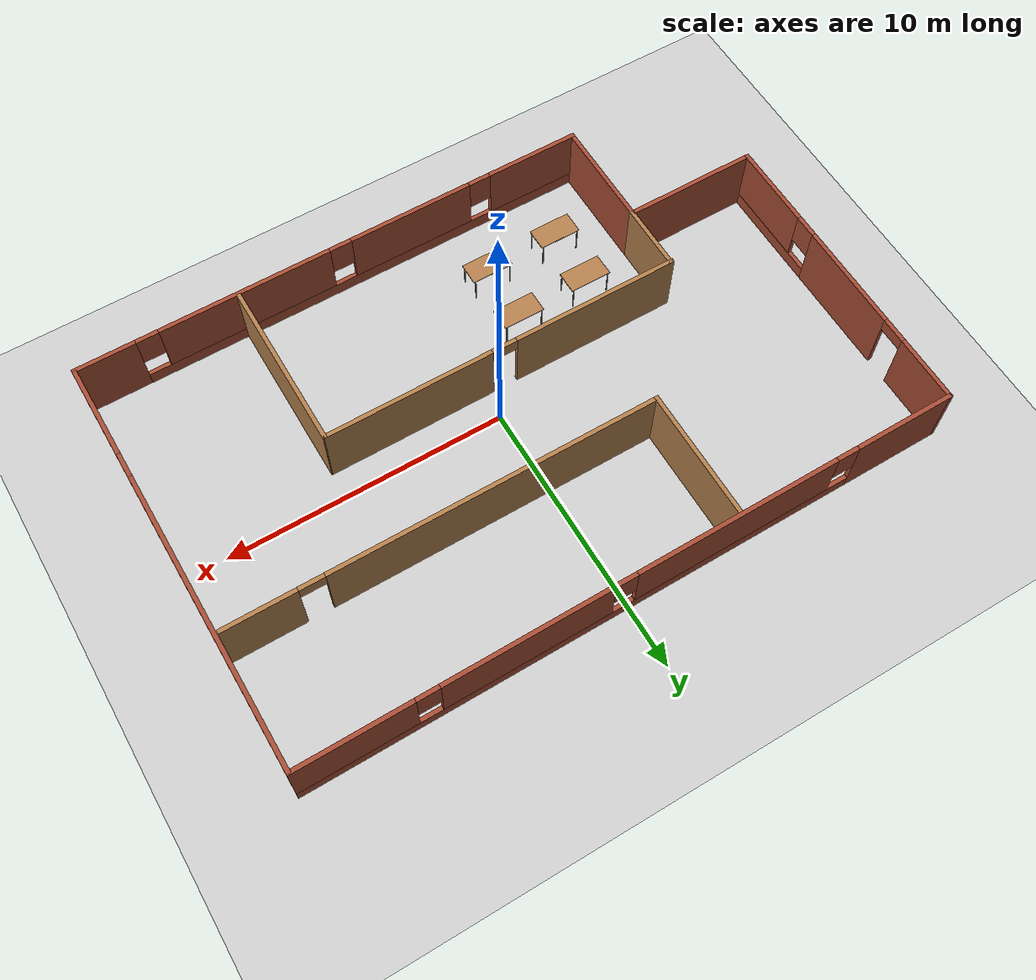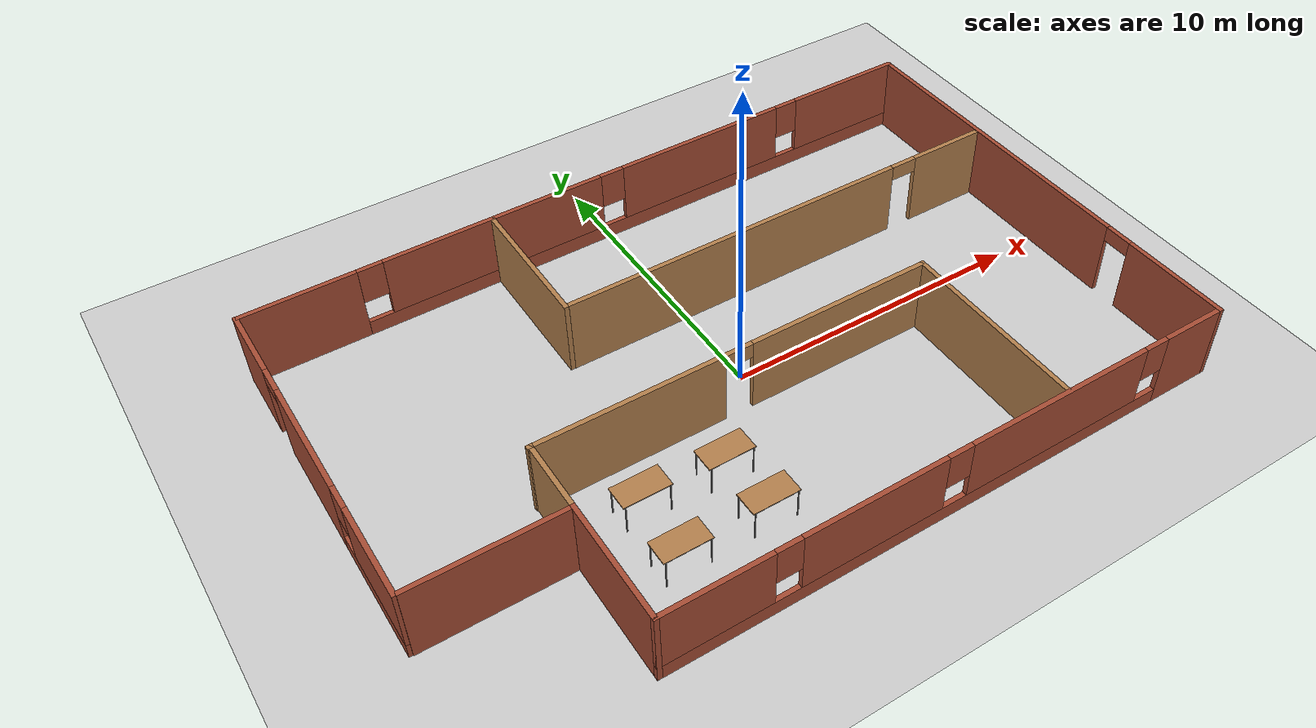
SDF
<sdf version="1.6">
 <world name="default">
  <model name="ground_plane">
   <static>1</static>
   <link name="link">
    <collision name="collision">
     <geometry><plane><normal>0 0 1</normal><size>100 100</size></plane></geometry>
     <surface><friction><ode><mu>100</mu><mu2>50</mu2></ode></friction></surface>
    </collision>
    <visual name="visual">
     <cast_shadows>0</cast_shadows>
     <geometry><plane><normal>0 0 1</normal><size>100 100</size></plane></geometry>
     <material>
      <script><uri>file://media/materials/scripts/gazebo.material</uri><name>Gazebo/Grey</name></script>
     </material>
    </visual>
   </link>
  </model>
  <model name="build2">
   <pose>-0.2148 0.30138 0 0 -0 0</pose>
   <link name="Wall_24">
    <pose>-11.6566 1.88746 0 0 0 -1.56954</pose>
    <visual name="Wall_24_Visual_0">
     <pose>-4.36296 0 1.25 0 -0 0</pose>
     <geometry><box><size>2.44005 0.15 2.5</size></box></geometry>
     <material>
      <script><uri>file://media/materials/scripts/gazebo.material</uri><name>Gazebo/Bricks</name></script>
      <ambient>1 1 1 1</ambient>
     </material>
     <meta><layer>0</layer></meta>
    </visual>
    <collision name="Wall_24_Collision_0">
     <geometry><box><size>2.44005 0.15 2.5</size></box></geometry>
     <pose>-4.36296 0 1.25 0 -0 0</pose>
    </collision>
    <visual name="Wall_24_Visual_1">
     <pose>-0.28088 0 1.25 0 -0 0</pose>
     <geometry><box><size>3.92411 0.15 2.5</size></box></geometry>
     <material>
      <script><uri>file://media/materials/scripts/gazebo.material</uri><name>Gazebo/Bricks</name></script>
      <ambient>1 1 1 1</ambient>
     </material>
     <meta><layer>0</layer></meta>
    </visual>
    <collision name="Wall_24_Collision_1">
     <geometry><box><size>3.92411 0.15 2.5</size></box></geometry>
     <pose>-0.28088 0 1.25 0 -0 0</pose>
    </collision>
    <visual name="Wall_24_Visual_2">
     <pose>3.63208 0 0.25 0 -0 0</pose>
     <geometry><box><size>3.90181 0.15 0.5</size></box></geometry>
     <material>
      <script><uri>file://media/materials/scripts/gazebo.material</uri><name>Gazebo/Bricks</name></script>
      <ambient>1 1 1 1</ambient>
     </material>
     <meta><layer>0</layer></meta>
    </visual>
    <collision name="Wall_24_Collision_2">
     <geometry><box><size>3.90181 0.15 0.5</size></box></geometry>
     <pose>3.63208 0 0.25 0 -0 0</pose>
    </collision>
    <visual name="Wall_24_Visual_3">
     <pose>4.03208 0 1.5 0 -0 0</pose>
     <geometry><box><size>3.10181 0.15 2</size></box></geometry>
     <material>
      <script><uri>file://media/materials/scripts/gazebo.material</uri><name>Gazebo/Bricks</name></script>
      <ambient>1 1 1 1</ambient>
     </material>
     <meta><layer>0</layer></meta>
    </visual>
    <collision name="Wall_24_Collision_3">
     <geometry><box><size>3.10181 0.15 2</size></box></geometry>
     <pose>4.03208 0 1.5 0 -0 0</pose>
    </collision>
    <visual name="Wall_24_Visual_4">
     <pose>2.08117 0 1.9 0 -0 0</pose>
     <geometry><box><size>0.8 0.15 1.2</size></box></geometry>
     <material>
      <script><uri>file://media/materials/scripts/gazebo.material</uri><name>Gazebo/Bricks</name></script>
      <ambient>1 1 1 1</ambient>
     </material>
     <meta><layer>0</layer></meta>
    </visual>
    <collision name="Wall_24_Collision_4">
     <geometry><box><size>0.8 0.15 1.2</size></box></geometry>
     <pose>2.08117 0 1.9 0 -0 0</pose>
    </collision>
    <visual name="Wall_24_Visual_5">
     <pose>-2.69294 0 2.25 0 -0 0</pose>
     <geometry><box><size>0.9 0.15 0.5</size></box></geometry>
     <material>
      <script><uri>file://media/materials/scripts/gazebo.material</uri><name>Gazebo/Bricks</name></script>
      <ambient>1 1 1 1</ambient>
     </material>
     <meta><layer>0</layer></meta>
    </visual>
    <collision name="Wall_24_Collision_5">
     <geometry><box><size>0.9 0.15 0.5</size></box></geometry>
     <pose>-2.69294 0 2.25 0 -0 0</pose>
    </collision>
   </link>
   <link name="Wall_26">
    <pose>-0.020877 7.44171 0 0 -0 0.003988</pose>
    <visual name="Wall_26_Visual_0">
     <pose>-9.86647 0 1.25 0 -0 0</pose>
     <geometry><box><size>3.62156 0.15 2.5</size></box></geometry>
     <material>
      <script><uri>file://media/materials/scripts/gazebo.material</uri><name>Gazebo/Bricks</name></script>
      <ambient>1 1 1 1</ambient>
     </material>
     <meta><layer>0</layer></meta>
    </visual>
    <collision name="Wall_26_Collision_0">
     <geometry><box><size>3.62156 0.15 2.5</size></box></geometry>
     <pose>-9.86647 0 1.25 0 -0 0</pose>
    </collision>
    <visual name="Wall_26_Visual_1">
     <pose>1.81078 0 0.25 0 -0 0</pose>
     <geometry><box><size>19.7329 0.15 0.5</size></box></geometry>
     <material>
      <script><uri>file://media/materials/scripts/gazebo.material</uri><name>Gazebo/Bricks</name></script>
      <ambient>1 1 1 1</ambient>
     </material>
     <meta><layer>0</layer></meta>
    </visual>
    <collision name="Wall_26_Collision_1">
     <geometry><box><size>19.7329 0.15 0.5</size></box></geometry>
     <pose>1.81078 0 0.25 0 -0 0</pose>
    </collision>
    <visual name="Wall_26_Visual_2">
     <pose>-3.58961 0 1.5 0 -0 0</pose>
     <geometry><box><size>7.33215 0.15 2</size></box></geometry>
     <material>
      <script><uri>file://media/materials/scripts/gazebo.material</uri><name>Gazebo/Bricks</name></script>
      <ambient>1 1 1 1</ambient>
     </material>
     <meta><layer>0</layer></meta>
    </visual>
    <collision name="Wall_26_Collision_2">
     <geometry><box><size>7.33215 0.15 2</size></box></geometry>
     <pose>-3.58961 0 1.5 0 -0 0</pose>
    </collision>
    <visual name="Wall_26_Visual_3">
     <pose>3.83417 0 1.5 0 -0 0</pose>
     <geometry><box><size>5.91541 0.15 2</size></box></geometry>
     <material>
      <script><uri>file://media/materials/scripts/gazebo.material</uri><name>Gazebo/Bricks</name></script>
      <ambient>1 1 1 1</ambient>
     </material>
     <meta><layer>0</layer></meta>
    </visual>
    <collision name="Wall_26_Collision_3">
     <geometry><box><size>5.91541 0.15 2</size></box></geometry>
     <pose>3.83417 0 1.5 0 -0 0</pose>
    </collision>
    <visual name="Wall_26_Visual_4">
     <pose>9.63456 0 1.5 0 -0 0</pose>
     <geometry><box><size>4.08537 0.15 2</size></box></geometry>
     <material>
      <script><uri>file://media/materials/scripts/gazebo.material</uri><name>Gazebo/Bricks</name></script>
      <ambient>1 1 1 1</ambient>
     </material>
     <meta><layer>0</layer></meta>
    </visual>
    <collision name="Wall_26_Collision_4">
     <geometry><box><size>4.08537 0.15 2</size></box></geometry>
     <pose>9.63456 0 1.5 0 -0 0</pose>
    </collision>
    <visual name="Wall_26_Visual_5">
     <pose>-7.65569 0 1.9 0 -0 0</pose>
     <geometry><box><size>0.8 0.15 1.2</size></box></geometry>
     <material>
      <script><uri>file://media/materials/scripts/gazebo.material</uri><name>Gazebo/Bricks</name></script>
      <ambient>1 1 1 1</ambient>
     </material>
     <meta><layer>0</layer></meta>
    </visual>
    <collision name="Wall_26_Collision_5">
     <geometry><box><size>0.8 0.15 1.2</size></box></geometry>
     <pose>-7.65569 0 1.9 0 -0 0</pose>
    </collision>
    <visual name="Wall_26_Visual_6">
     <pose>0.476465 0 1.9 0 -0 0</pose>
     <geometry><box><size>0.8 0.15 1.2</size></box></geometry>
     <material>
      <script><uri>file://media/materials/scripts/gazebo.material</uri><name>Gazebo/Bricks</name></script>
      <ambient>1 1 1 1</ambient>
     </material>
     <meta><layer>0</layer></meta>
    </visual>
    <collision name="Wall_26_Collision_6">
     <geometry><box><size>0.8 0.15 1.2</size></box></geometry>
     <pose>0.476465 0 1.9 0 -0 0</pose>
    </collision>
    <visual name="Wall_26_Visual_7">
     <pose>7.19188 0 1.9 0 -0 0</pose>
     <geometry><box><size>0.8 0.15 1.2</size></box></geometry>
     <material>
      <script><uri>file://media/materials/scripts/gazebo.material</uri><name>Gazebo/Bricks</name></script>
      <ambient>1 1 1 1</ambient>
     </material>
     <meta><layer>0</layer></meta>
    </visual>
    <collision name="Wall_26_Collision_7">
     <geometry><box><size>0.8 0.15 1.2</size></box></geometry>
     <pose>7.19188 0 1.9 0 -0 0</pose>
    </collision>
   </link>
   <link name="Wall_27">
    <pose>11.6222 -0.019992 0 0 0 -1.56531</pose>
    <visual name="Wall_27_Visual_0">
     <pose>-2.21048 0 1.25 0 -0 0</pose>
     <geometry><box><size>10.665 0.15 2.5</size></box></geometry>
     <material>
      <script><uri>file://media/materials/scripts/gazebo.material</uri><name>Gazebo/Bricks</name></script>
      <ambient>1 1 1 1</ambient>
     </material>
     <meta><layer>0</layer></meta>
    </visual>
    <collision name="Wall_27_Collision_0">
     <geometry><box><size>10.665 0.15 2.5</size></box></geometry>
     <pose>-2.21048 0 1.25 0 -0 0</pose>
    </collision>
    <visual name="Wall_27_Visual_1">
     <pose>5.78251 0 1.25 0 -0 0</pose>
     <geometry><box><size>3.52096 0.15 2.5</size></box></geometry>
     <material>
      <script><uri>file://media/materials/scripts/gazebo.material</uri><name>Gazebo/Bricks</name></script>
      <ambient>1 1 1 1</ambient>
     </material>
     <meta><layer>0</layer></meta>
    </visual>
    <collision name="Wall_27_Collision_1">
     <geometry><box><size>3.52096 0.15 2.5</size></box></geometry>
     <pose>5.78251 0 1.25 0 -0 0</pose>
    </collision>
    <visual name="Wall_27_Visual_2">
     <pose>3.57203 0 2.25 0 -0 0</pose>
     <geometry><box><size>0.9 0.15 0.5</size></box></geometry>
     <material>
      <script><uri>file://media/materials/scripts/gazebo.material</uri><name>Gazebo/Bricks</name></script>
      <ambient>1 1 1 1</ambient>
     </material>
     <meta><layer>0</layer></meta>
    </visual>
    <collision name="Wall_27_Collision_2">
     <geometry><box><size>0.9 0.15 0.5</size></box></geometry>
     <pose>3.57203 0 2.25 0 -0 0</pose>
    </collision>
   </link>
   <link name="Wall_28">
    <pose>2.36317 -7.48751 0 0 -0 3.14159</pose>
    <visual name="Wall_28_Visual_0">
     <pose>-8.2825 0 1.25 0 -0 0</pose>
     <geometry><box><size>2.18499 0.15 2.5</size></box></geometry>
     <material>
      <script><uri>file://media/materials/scripts/gazebo.material</uri><name>Gazebo/Bricks</name></script>
      <ambient>1 1 1 1</ambient>
     </material>
     <meta><layer>0</layer></meta>
    </visual>
    <collision name="Wall_28_Collision_0">
     <geometry><box><size>2.18499 0.15 2.5</size></box></geometry>
     <pose>-8.2825 0 1.25 0 -0 0</pose>
    </collision>
    <visual name="Wall_28_Visual_1">
     <pose>1.0925 0 0.25 0 -0 0</pose>
     <geometry><box><size>16.565 0.15 0.5</size></box></geometry>
     <material>
      <script><uri>file://media/materials/scripts/gazebo.material</uri><name>Gazebo/Bricks</name></script>
      <ambient>1 1 1 1</ambient>
     </material>
     <meta><layer>0</layer></meta>
    </visual>
    <collision name="Wall_28_Collision_1">
     <geometry><box><size>16.565 0.15 0.5</size></box></geometry>
     <pose>1.0925 0 0.25 0 -0 0</pose>
    </collision>
    <visual name="Wall_28_Visual_2">
     <pose>-3.2906 0 1.5 0 -0 0</pose>
     <geometry><box><size>6.19881 0.15 2</size></box></geometry>
     <material>
      <script><uri>file://media/materials/scripts/gazebo.material</uri><name>Gazebo/Bricks</name></script>
      <ambient>1 1 1 1</ambient>
     </material>
     <meta><layer>0</layer></meta>
    </visual>
    <collision name="Wall_28_Collision_2">
     <geometry><box><size>6.19881 0.15 2</size></box></geometry>
     <pose>-3.2906 0 1.5 0 -0 0</pose>
    </collision>
    <visual name="Wall_28_Visual_3">
     <pose>2.87888 0 1.5 0 -0 0</pose>
     <geometry><box><size>4.54014 0.15 2</size></box></geometry>
     <material>
      <script><uri>file://media/materials/scripts/gazebo.material</uri><name>Gazebo/Bricks</name></script>
      <ambient>1 1 1 1</ambient>
     </material>
     <meta><layer>0</layer></meta>
    </visual>
    <collision name="Wall_28_Collision_3">
     <geometry><box><size>4.54014 0.15 2</size></box></geometry>
     <pose>2.87888 0 1.5 0 -0 0</pose>
    </collision>
    <visual name="Wall_28_Visual_4">
     <pose>7.66197 0 1.5 0 -0 0</pose>
     <geometry><box><size>3.42605 0.15 2</size></box></geometry>
     <material>
      <script><uri>file://media/materials/scripts/gazebo.material</uri><name>Gazebo/Bricks</name></script>
      <ambient>1 1 1 1</ambient>
     </material>
     <meta><layer>0</layer></meta>
    </visual>
    <collision name="Wall_28_Collision_4">
     <geometry><box><size>3.42605 0.15 2</size></box></geometry>
     <pose>7.66197 0 1.5 0 -0 0</pose>
    </collision>
    <visual name="Wall_28_Visual_5">
     <pose>-6.79001 0 1.9 0 -0 0</pose>
     <geometry><box><size>0.8 0.15 1.2</size></box></geometry>
     <material>
      <script><uri>file://media/materials/scripts/gazebo.material</uri><name>Gazebo/Bricks</name></script>
      <ambient>1 1 1 1</ambient>
     </material>
     <meta><layer>0</layer></meta>
    </visual>
    <collision name="Wall_28_Collision_5">
     <geometry><box><size>0.8 0.15 1.2</size></box></geometry>
     <pose>-6.79001 0 1.9 0 -0 0</pose>
    </collision>
    <visual name="Wall_28_Visual_6">
     <pose>0.208809 0 1.9 0 -0 0</pose>
     <geometry><box><size>0.8 0.15 1.2</size></box></geometry>
     <material>
      <script><uri>file://media/materials/scripts/gazebo.material</uri><name>Gazebo/Bricks</name></script>
      <ambient>1 1 1 1</ambient>
     </material>
     <meta><layer>0</layer></meta>
    </visual>
    <collision name="Wall_28_Collision_6">
     <geometry><box><size>0.8 0.15 1.2</size></box></geometry>
     <pose>0.208809 0 1.9 0 -0 0</pose>
    </collision>
    <visual name="Wall_28_Visual_7">
     <pose>5.54894 0 1.9 0 -0 0</pose>
     <geometry><box><size>0.8 0.15 1.2</size></box></geometry>
     <material>
      <script><uri>file://media/materials/scripts/gazebo.material</uri><name>Gazebo/Bricks</name></script>
      <ambient>1 1 1 1</ambient>
     </material>
     <meta><layer>0</layer></meta>
    </visual>
    <collision name="Wall_28_Collision_7">
     <geometry><box><size>0.8 0.15 1.2</size></box></geometry>
     <pose>5.54894 0 1.9 0 -0 0</pose>
    </collision>
   </link>
   <link name="Wall_29">
    <collision name="Wall_29_Collision">
     <geometry><box><size>4 0.15 2.5</size></box></geometry>
     <pose>0 0 1.25 0 -0 0</pose>
    </collision>
    <visual name="Wall_29_Visual">
     <pose>0 0 1.25 0 -0 0</pose>
     <geometry><box><size>4 0.15 2.5</size></box></geometry>
     <material>
      <script><uri>file://media/materials/scripts/gazebo.material</uri><name>Gazebo/Bricks</name></script>
      <ambient>1 1 1 1</ambient>
     </material>
     <meta><layer>0</layer></meta>
    </visual>
    <pose>-6.93683 -5.56251 0 0 -0 1.5708</pose>
   </link>
   <link name="Wall_31">
    <collision name="Wall_31_Collision">
     <geometry><box><size>4.75 0.15 2.5</size></box></geometry>
     <pose>0 0 1.25 0 -0 0</pose>
    </collision>
    <visual name="Wall_31_Visual">
     <pose>0 0 1.25 0 -0 0</pose>
     <geometry><box><size>4.75 0.15 2.5</size></box></geometry>
     <material>
      <script><uri>file://media/materials/scripts/gazebo.material</uri><name>Gazebo/Bricks</name></script>
      <ambient>1 1 1 1</ambient>
     </material>
     <meta><layer>0</layer></meta>
    </visual>
    <pose>-9.23683 -3.63751 0 0 -0 3.14159</pose>
   </link>
   <link name="Wall_33">
    <collision name="Wall_33_Collision">
     <geometry><box><size>2.44839 0.15 2.5</size></box></geometry>
     <pose>0 0 1.25 0 -0 0</pose>
    </collision>
    <visual name="Wall_33_Visual">
     <pose>0 0 1.25 0 -0 0</pose>
     <geometry><box><size>2.44839 0.15 2.5</size></box></geometry>
     <material>
      <script><uri>file://media/materials/scripts/gazebo.material</uri><name>Gazebo/Wood</name></script>
      <ambient>1 1 1 1</ambient>
     </material>
     <meta><layer>0</layer></meta>
    </visual>
    <pose>-6.93683 -2.48832 0 0 -0 1.5708</pose>
   </link>
   <link name="Wall_34">
    <pose>-0.547009 -1.33912 0 0 -0 0</pose>
    <visual name="Wall_34_Visual_0">
     <pose>-3.47958 0 1.25 0 -0 0</pose>
     <geometry><box><size>6.04085 0.15 2.5</size></box></geometry>
     <material>
      <script><uri>file://media/materials/scripts/gazebo.material</uri><name>Gazebo/Wood</name></script>
      <ambient>1 1 1 1</ambient>
     </material>
     <meta><layer>0</layer></meta>
    </visual>
    <collision name="Wall_34_Collision_0">
     <geometry><box><size>6.04085 0.15 2.5</size></box></geometry>
     <pose>-3.47958 0 1.25 0 -0 0</pose>
    </collision>
    <visual name="Wall_34_Visual_1">
     <pose>3.47042 0 1.25 0 -0 0</pose>
     <geometry><box><size>6.05915 0.15 2.5</size></box></geometry>
     <material>
      <script><uri>file://media/materials/scripts/gazebo.material</uri><name>Gazebo/Wood</name></script>
      <ambient>1 1 1 1</ambient>
     </material>
     <meta><layer>0</layer></meta>
    </visual>
    <collision name="Wall_34_Collision_1">
     <geometry><box><size>6.05915 0.15 2.5</size></box></geometry>
     <pose>3.47042 0 1.25 0 -0 0</pose>
    </collision>
    <visual name="Wall_34_Visual_2">
     <pose>-0.009154 0 2.25 0 -0 0</pose>
     <geometry><box><size>0.9 0.15 0.5</size></box></geometry>
     <material>
      <script><uri>file://media/materials/scripts/gazebo.material</uri><name>Gazebo/Wood</name></script>
      <ambient>1 1 1 1</ambient>
     </material>
     <meta><layer>0</layer></meta>
    </visual>
    <collision name="Wall_34_Collision_2">
     <geometry><box><size>0.9 0.15 0.5</size></box></geometry>
     <pose>-0.009154 0 2.25 0 -0 0</pose>
    </collision>
   </link>
   <link name="Wall_35">
    <collision name="Wall_35_Collision">
     <geometry><box><size>6.19839 0.15 2.5</size></box></geometry>
     <pose>0 0 1.25 0 -0 0</pose>
    </collision>
    <visual name="Wall_35_Visual">
     <pose>0 0 1.25 0 -0 0</pose>
     <geometry><box><size>6.19839 0.15 2.5</size></box></geometry>
     <material>
      <script><uri>file://media/materials/scripts/gazebo.material</uri><name>Gazebo/Wood</name></script>
      <ambient>1 1 1 1</ambient>
     </material>
     <meta><layer>0</layer></meta>
    </visual>
    <pose>5.91317 -4.36332 0 0 0 -1.5708</pose>
   </link>
   <link name="Wall_37">
    <collision name="Wall_37_Collision">
     <geometry><box><size>4.75 0.15 2.5</size></box></geometry>
     <pose>0 0 1.25 0 -0 0</pose>
    </collision>
    <visual name="Wall_37_Visual">
     <pose>0 0 1.25 0 -0 0</pose>
     <geometry><box><size>4.75 0.15 2.5</size></box></geometry>
     <material>
      <script><uri>file://media/materials/scripts/gazebo.material</uri><name>Gazebo/Wood</name></script>
      <ambient>1 1 1 1</ambient>
     </material>
     <meta><layer>0</layer></meta>
    </visual>
    <pose>-3.69922 5.07164 0 0 0 -1.5708</pose>
   </link>
   <link name="Wall_38">
    <pose>3.89123 2.77164 0 0 -0 0</pose>
    <visual name="Wall_38_Visual_0">
     <pose>-1.7504 0 1.25 0 -0 0</pose>
     <geometry><box><size>11.7492 0.15 2.5</size></box></geometry>
     <material>
      <script><uri>file://media/materials/scripts/gazebo.material</uri><name>Gazebo/Wood</name></script>
      <ambient>1 1 1 1</ambient>
     </material>
     <meta><layer>0</layer></meta>
    </visual>
    <collision name="Wall_38_Collision_0">
     <geometry><box><size>11.7492 0.15 2.5</size></box></geometry>
     <pose>-1.7504 0 1.25 0 -0 0</pose>
    </collision>
    <visual name="Wall_38_Visual_1">
     <pose>6.3246 0 1.25 0 -0 0</pose>
     <geometry><box><size>2.6008 0.15 2.5</size></box></geometry>
     <material>
      <script><uri>file://media/materials/scripts/gazebo.material</uri><name>Gazebo/Wood</name></script>
      <ambient>1 1 1 1</ambient>
     </material>
     <meta><layer>0</layer></meta>
    </visual>
    <collision name="Wall_38_Collision_1">
     <geometry><box><size>2.6008 0.15 2.5</size></box></geometry>
     <pose>6.3246 0 1.25 0 -0 0</pose>
    </collision>
    <visual name="Wall_38_Visual_2">
     <pose>4.5742 0 2.25 0 -0 0</pose>
     <geometry><box><size>0.9 0.15 0.5</size></box></geometry>
     <material>
      <script><uri>file://media/materials/scripts/gazebo.material</uri><name>Gazebo/Wood</name></script>
      <ambient>1 1 1 1</ambient>
     </material>
     <meta><layer>0</layer></meta>
    </visual>
    <collision name="Wall_38_Collision_2">
     <geometry><box><size>0.9 0.15 0.5</size></box></geometry>
     <pose>4.5742 0 2.25 0 -0 0</pose>
    </collision>
   </link>
   <static>1</static>
  </model>
  <model name="table_2_clone">
   <static>1</static>
   <link name="link">
    <collision name="surface">
     <pose>0 0 1 0 -0 0</pose>
     <geometry><box><size>1.5 0.8 0.03</size></box></geometry>
     <surface><friction><ode><mu>0.6</mu><mu2>0.6</mu2></ode></friction></surface>
    </collision>
    <visual name="visual1">
     <pose>0 0 1 0 -0 0</pose>
     <geometry><box><size>1.5 0.8 0.03</size></box></geometry>
     <material>
      <script><uri>file://media/materials/scripts/gazebo.material</uri><name>Gazebo/Wood</name></script>
     </material>
    </visual>
    <collision name="front_left_leg">
     <pose>0.68 0.38 0.5 0 -0 0</pose>
     <geometry><cylinder><radius>0.02</radius><length>1</length></cylinder></geometry>
    </collision>
    <visual name="front_left_leg">
     <pose>0.68 0.38 0.5 0 -0 0</pose>
     <geometry><cylinder><radius>0.02</radius><length>1</length></cylinder></geometry>
     <material>
      <script><uri>file://media/materials/scripts/gazebo.material</uri><name>Gazebo/Grey</name></script>
     </material>
    </visual>
    <collision name="front_right_leg">
     <pose>0.68 -0.38 0.5 0 -0 0</pose>
     <geometry><cylinder><radius>0.02</radius><length>1</length></cylinder></geometry>
    </collision>
    <visual name="front_right_leg">
     <pose>0.68 -0.38 0.5 0 -0 0</pose>
     <geometry><cylinder><radius>0.02</radius><length>1</length></cylinder></geometry>
     <material>
      <script><uri>file://media/materials/scripts/gazebo.material</uri><name>Gazebo/Grey</name></script>
     </material>
    </visual>
    <collision name="back_right_leg">
     <pose>-0.68 -0.38 0.5 0 -0 0</pose>
     <geometry><cylinder><radius>0.02</radius><length>1</length></cylinder></geometry>
    </collision>
    <visual name="back_right_leg">
     <pose>-0.68 -0.38 0.5 0 -0 0</pose>
     <geometry><cylinder><radius>0.02</radius><length>1</length></cylinder></geometry>
     <material>
      <script><uri>file://media/materials/scripts/gazebo.material</uri><name>Gazebo/Grey</name></script>
     </material>
    </visual>
    <collision name="back_left_leg">
     <pose>-0.68 0.38 0.5 0 -0 0</pose>
     <geometry><cylinder><radius>0.02</radius><length>1</length></cylinder></geometry>
    </collision>
    <visual name="back_left_leg">
     <pose>-0.68 0.38 0.5 0 -0 0</pose>
     <geometry><cylinder><radius>0.02</radius><length>1</length></cylinder></geometry>
     <material>
      <script><uri>file://media/materials/scripts/gazebo.material</uri><name>Gazebo/Grey</name></script>
     </material>
    </visual>
   </link>
   <pose>-2.34773 -2.76218 0 0 -0 0</pose>
  </model>
  <model name="table_2_clone_0">
   <static>1</static>
   <link name="link">
    <collision name="surface">
     <pose>0 0 1 0 -0 0</pose>
     <geometry><box><size>1.5 0.8 0.03</size></box></geometry>
     <surface><friction><ode><mu>0.6</mu><mu2>0.6</mu2></ode></friction></surface>
    </collision>
    <visual name="visual1">
     <pose>0 0 1 0 -0 0</pose>
     <geometry><box><size>1.5 0.8 0.03</size></box></geometry>
     <material>
      <script><uri>file://media/materials/scripts/gazebo.material</uri><name>Gazebo/Wood</name></script>
     </material>
    </visual>
    <collision name="front_left_leg">
     <pose>0.68 0.38 0.5 0 -0 0</pose>
     <geometry><cylinder><radius>0.02</radius><length>1</length></cylinder></geometry>
    </collision>
    <visual name="front_left_leg">
     <pose>0.68 0.38 0.5 0 -0 0</pose>
     <geometry><cylinder><radius>0.02</radius><length>1</length></cylinder></geometry>
     <material>
      <script><uri>file://media/materials/scripts/gazebo.material</uri><name>Gazebo/Grey</name></script>
     </material>
    </visual>
    <collision name="front_right_leg">
     <pose>0.68 -0.38 0.5 0 -0 0</pose>
     <geometry><cylinder><radius>0.02</radius><length>1</length></cylinder></geometry>
    </collision>
    <visual name="front_right_leg">
     <pose>0.68 -0.38 0.5 0 -0 0</pose>
     <geometry><cylinder><radius>0.02</radius><length>1</length></cylinder></geometry>
     <material>
      <script><uri>file://media/materials/scripts/gazebo.material</uri><name>Gazebo/Grey</name></script>
     </material>
    </visual>
    <collision name="back_right_leg">
     <pose>-0.68 -0.38 0.5 0 -0 0</pose>
     <geometry><cylinder><radius>0.02</radius><length>1</length></cylinder></geometry>
    </collision>
    <visual name="back_right_leg">
     <pose>-0.68 -0.38 0.5 0 -0 0</pose>
     <geometry><cylinder><radius>0.02</radius><length>1</length></cylinder></geometry>
     <material>
      <script><uri>file://media/materials/scripts/gazebo.material</uri><name>Gazebo/Grey</name></script>
     </material>
    </visual>
    <collision name="back_left_leg">
     <pose>-0.68 0.38 0.5 0 -0 0</pose>
     <geometry><cylinder><radius>0.02</radius><length>1</length></cylinder></geometry>
    </collision>
    <visual name="back_left_leg">
     <pose>-0.68 0.38 0.5 0 -0 0</pose>
     <geometry><cylinder><radius>0.02</radius><length>1</length></cylinder></geometry>
     <material>
      <script><uri>file://media/materials/scripts/gazebo.material</uri><name>Gazebo/Grey</name></script>
     </material>
    </visual>
   </link>
   <pose>-2.29644 -4.76525 0.200823 0 -0 0</pose>
  </model>
  <model name="table_2_clone_0_clone">
   <static>1</static>
   <link name="link">
    <collision name="surface">
     <pose>0 0 1 0 -0 0</pose>
     <geometry><box><size>1.5 0.8 0.03</size></box></geometry>
     <surface><friction><ode><mu>0.6</mu><mu2>0.6</mu2></ode></friction></surface>
    </collision>
    <visual name="visual1">
     <pose>0 0 1 0 -0 0</pose>
     <geometry><box><size>1.5 0.8 0.03</size></box></geometry>
     <material>
      <script><uri>file://media/materials/scripts/gazebo.material</uri><name>Gazebo/Wood</name></script>
     </material>
    </visual>
    <collision name="front_left_leg">
     <pose>0.68 0.38 0.5 0 -0 0</pose>
     <geometry><cylinder><radius>0.02</radius><length>1</length></cylinder></geometry>
    </collision>
    <visual name="front_left_leg">
     <pose>0.68 0.38 0.5 0 -0 0</pose>
     <geometry><cylinder><radius>0.02</radius><length>1</length></cylinder></geometry>
     <material>
      <script><uri>file://media/materials/scripts/gazebo.material</uri><name>Gazebo/Grey</name></script>
     </material>
    </visual>
    <collision name="front_right_leg">
     <pose>0.68 -0.38 0.5 0 -0 0</pose>
     <geometry><cylinder><radius>0.02</radius><length>1</length></cylinder></geometry>
    </collision>
    <visual name="front_right_leg">
     <pose>0.68 -0.38 0.5 0 -0 0</pose>
     <geometry><cylinder><radius>0.02</radius><length>1</length></cylinder></geometry>
     <material>
      <script><uri>file://media/materials/scripts/gazebo.material</uri><name>Gazebo/Grey</name></script>
     </material>
    </visual>
    <collision name="back_right_leg">
     <pose>-0.68 -0.38 0.5 0 -0 0</pose>
     <geometry><cylinder><radius>0.02</radius><length>1</length></cylinder></geometry>
    </collision>
    <visual name="back_right_leg">
     <pose>-0.68 -0.38 0.5 0 -0 0</pose>
     <geometry><cylinder><radius>0.02</radius><length>1</length></cylinder></geometry>
     <material>
      <script><uri>file://media/materials/scripts/gazebo.material</uri><name>Gazebo/Grey</name></script>
     </material>
    </visual>
    <collision name="back_left_leg">
     <pose>-0.68 0.38 0.5 0 -0 0</pose>
     <geometry><cylinder><radius>0.02</radius><length>1</length></cylinder></geometry>
    </collision>
    <visual name="back_left_leg">
     <pose>-0.68 0.38 0.5 0 -0 0</pose>
     <geometry><cylinder><radius>0.02</radius><length>1</length></cylinder></geometry>
     <material>
      <script><uri>file://media/materials/scripts/gazebo.material</uri><name>Gazebo/Grey</name></script>
     </material>
    </visual>
   </link>
   <pose>-5.01448 -4.81248 0.200823 0 -0 0</pose>
  </model>
  <model name="table_2_clone_0_clone_0">
   <static>1</static>
   <link name="link">
    <collision name="surface">
     <pose>0 0 1 0 -0 0</pose>
     <geometry><box><size>1.5 0.8 0.03</size></box></geometry>
     <surface><friction><ode><mu>0.6</mu><mu2>0.6</mu2></ode></friction></surface>
    </collision>
    <visual name="visual1">
     <pose>0 0 1 0 -0 0</pose>
     <geometry><box><size>1.5 0.8 0.03</size></box></geometry>
     <material>
      <script><uri>file://media/materials/scripts/gazebo.material</uri><name>Gazebo/Wood</name></script>
     </material>
    </visual>
    <collision name="front_left_leg">
     <pose>0.68 0.38 0.5 0 -0 0</pose>
     <geometry><cylinder><radius>0.02</radius><length>1</length></cylinder></geometry>
    </collision>
    <visual name="front_left_leg">
     <pose>0.68 0.38 0.5 0 -0 0</pose>
     <geometry><cylinder><radius>0.02</radius><length>1</length></cylinder></geometry>
     <material>
      <script><uri>file://media/materials/scripts/gazebo.material</uri><name>Gazebo/Grey</name></script>
     </material>
    </visual>
    <collision name="front_right_leg">
     <pose>0.68 -0.38 0.5 0 -0 0</pose>
     <geometry><cylinder><radius>0.02</radius><length>1</length></cylinder></geometry>
    </collision>
    <visual name="front_right_leg">
     <pose>0.68 -0.38 0.5 0 -0 0</pose>
     <geometry><cylinder><radius>0.02</radius><length>1</length></cylinder></geometry>
     <material>
      <script><uri>file://media/materials/scripts/gazebo.material</uri><name>Gazebo/Grey</name></script>
     </material>
    </visual>
    <collision name="back_right_leg">
     <pose>-0.68 -0.38 0.5 0 -0 0</pose>
     <geometry><cylinder><radius>0.02</radius><length>1</length></cylinder></geometry>
    </collision>
    <visual name="back_right_leg">
     <pose>-0.68 -0.38 0.5 0 -0 0</pose>
     <geometry><cylinder><radius>0.02</radius><length>1</length></cylinder></geometry>
     <material>
      <script><uri>file://media/materials/scripts/gazebo.material</uri><name>Gazebo/Grey</name></script>
     </material>
    </visual>
    <collision name="back_left_leg">
     <pose>-0.68 0.38 0.5 0 -0 0</pose>
     <geometry><cylinder><radius>0.02</radius><length>1</length></cylinder></geometry>
    </collision>
    <visual name="back_left_leg">
     <pose>-0.68 0.38 0.5 0 -0 0</pose>
     <geometry><cylinder><radius>0.02</radius><length>1</length></cylinder></geometry>
     <material>
      <script><uri>file://media/materials/scripts/gazebo.material</uri><name>Gazebo/Grey</name></script>
     </material>
    </visual>
   </link>
   <pose>-4.97567 -2.77528 0.200823 0 -0 0</pose>
  </model>
 </world>
</sdf>
